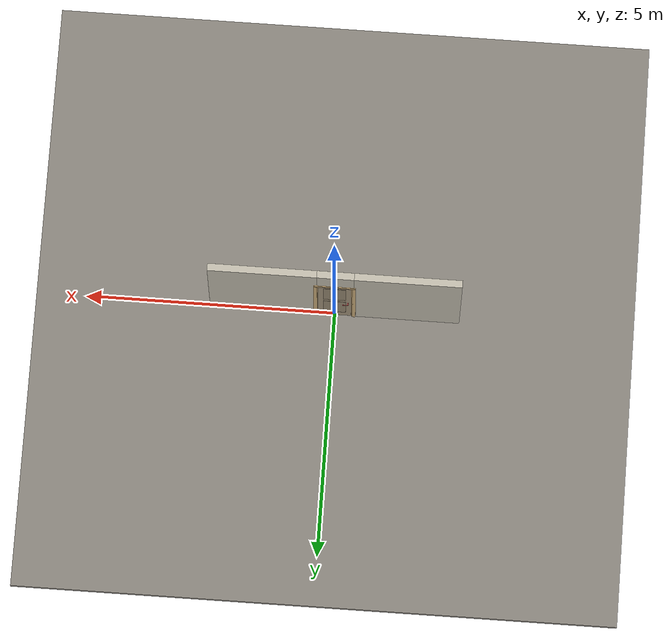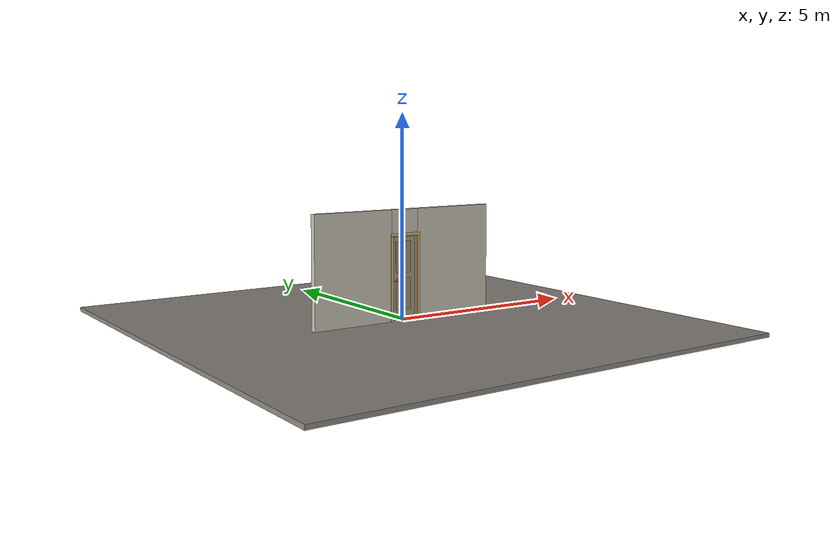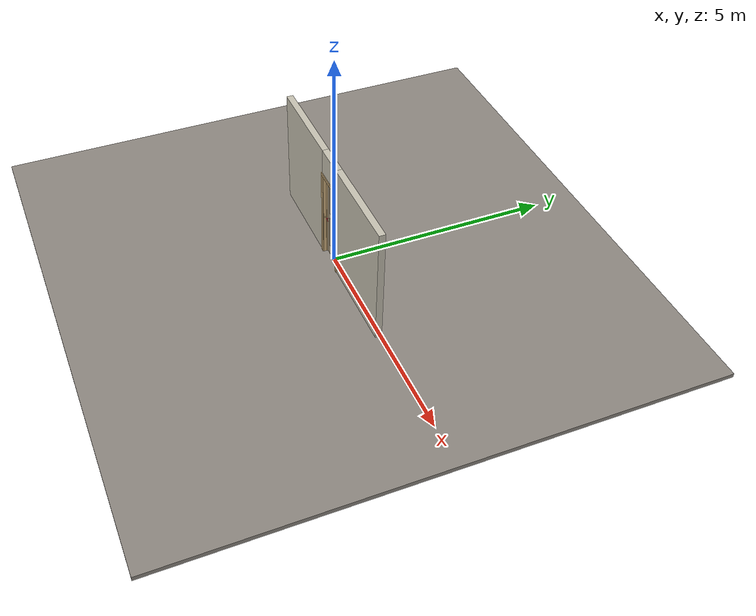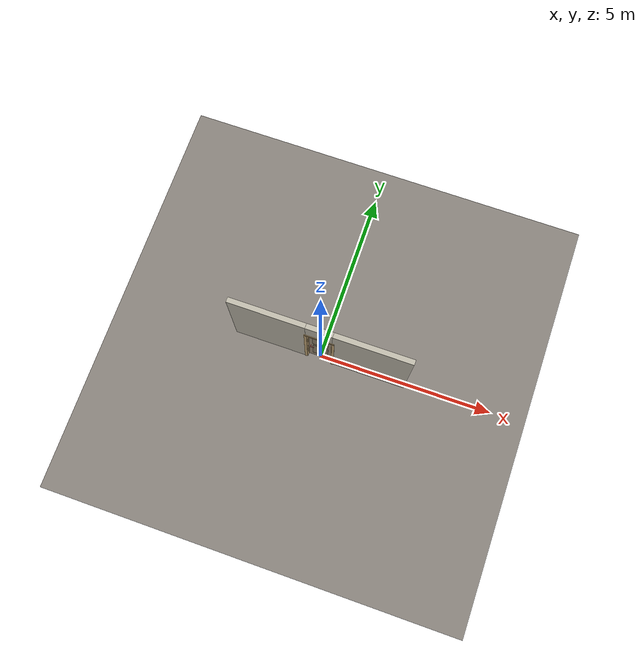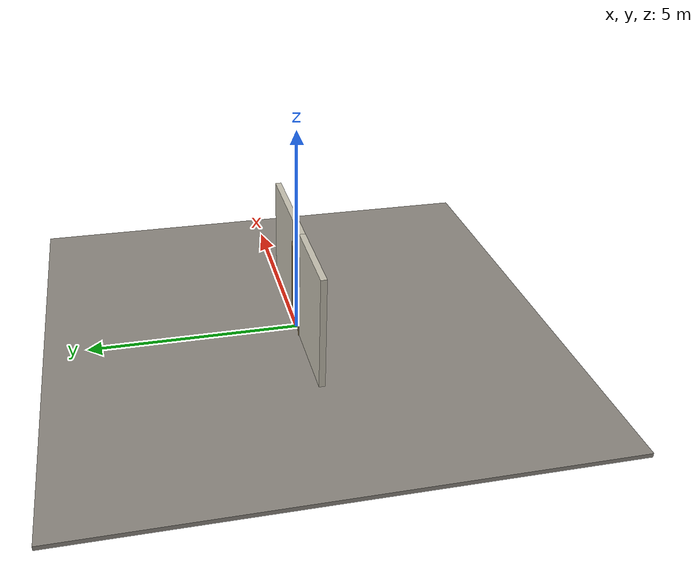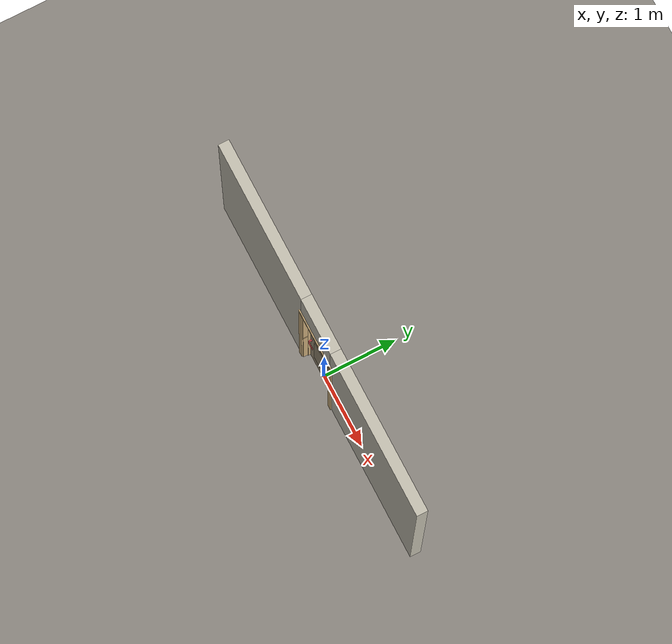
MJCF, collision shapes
<?xml version="1.0" ?>
<mujoco model="db0659_swing_single_full">
  <compiler angle="radian" meshdir="../../hardware" texturedir="../../textures" autolimits="true" inertiafromgeom="false"/>
  <option timestep="0.002" integrator="implicitfast" cone="elliptic" impratio="10" noslip_iterations="3">
    <flag multiccd="enable"/>
  </option>
  <size memory="16M"/>
  <default>
    <geom condim="4" solref="0.005 1" solimp="0.95 0.99 0.001"/>
    <joint solreflimit="0.005 1" solimplimit="0.95 0.99 0.001"/>
    <tendon solreflimit="0.005 1"/>
    <equality solref="0.002 1"/>
  </default>
  <visual>
    <headlight ambient="0.4 0.4 0.4" diffuse="0.7 0.7 0.7" specular="0.2 0.2 0.2"/>
    <quality shadowsize="4096"/>
    <map znear="0.01" zfar="60"/>
  </visual>
  <asset>
    <mesh name="hinge_2af0f4d6ca" file="hinge_2af0f4d6ca.obj"/>
    <mesh name="hinge_jamb_c0c0a62ada" file="hinge_jamb_c0c0a62ada.obj"/>
    <mesh name="lever_748f08efca" file="lever_748f08efca.obj"/>
    <material name="mat_floor" rgba="0.55 0.53 0.5 1" specular="0.2" shininess="0.15" reflectance="0"/>
    <material name="mat_wall" rgba="0.78 0.76 0.7 1" specular="0.2" shininess="0.1" reflectance="0"/>
    <material name="mat_leaf" rgba="0.66 0.6 0.5 1" specular="0.2" shininess="0.45" reflectance="0"/>
    <material name="mat_leaf_panel" rgba="0.607 0.552 0.46 1" specular="0.2" shininess="0.45" reflectance="0"/>
    <material name="mat_hinge" rgba="0.65 0.66 0.68 1" specular="0.74" shininess="0.5" reflectance="0.36"/>
    <material name="mat_op_chrome" rgba="0.9 0.9 0.92 1" specular="0.8" shininess="0.9" reflectance="0.4"/>
    <material name="mat_trim" rgba="0.85 0.66 0.3 1" specular="0.8" shininess="0.75" reflectance="0.4"/>
    <material name="mat_bolt" rgba="0.85 0.66 0.3 1" specular="0.8" shininess="0.75" reflectance="0.4"/>
    <material name="mat_frame" rgba="0.82 0.7 0.5 1" specular="0.2" shininess="0.45" reflectance="0"/>
    <texture name="skybox" type="skybox" builtin="gradient" rgb1="0.6 0.7 0.85" rgb2="0.9 0.92 0.95" width="256" height="256"/>
  </asset>
  <worldbody>
    <light name="sun" pos="1.5 -2.5 4" dir="-0.3 0.5 -0.8" directional="true" diffuse="0.8 0.8 0.8" specular="0.3 0.3 0.3" castshadow="true"/>
    <light name="fill" pos="-1.5 2.5 3" dir="0.3 -0.5 -0.7" directional="true" diffuse="0.35 0.35 0.4" castshadow="false"/>
    <camera name="robot_view" pos="0 -2.585687 1.734312" xyaxes="1 0 0 0 0.26963 0.962964" fovy="52"/>
    <camera name="far_view" pos="0 2.498687 1.734312" xyaxes="-1 0 0 0 -0.26963 0.962964" fovy="52"/>
    <camera name="iso" pos="-1.932062 -2.178937 2.141063" xyaxes="0.741536 -0.670913 0 0.242917 0.268487 0.932151" fovy="46"/>
    <camera name="detail_handle" pos="0.0006 -0.877 1.245" xyaxes="0.97561 0.219512 0 -0.070934 0.315262 0.94635" fovy="38"/>
    <geom name="floor" type="box" size="6 6 0.05" pos="0 0 -0.05" material="mat_floor" group="0" contype="1" conaffinity="1" friction="0.8 0.005 0.0001" density="2400"/>
    <geom name="wall_left" type="box" size="1.0585 0.0725 1.35" pos="-1.4415 -0.0435 1.35" material="mat_wall" group="0" contype="1" conaffinity="1" friction="0.6 0.005 0.0001" density="800"/>
    <geom name="wall_right" type="box" size="1.0735 0.0725 1.35" pos="1.4265 -0.0435 1.35" material="mat_wall" group="0" contype="1" conaffinity="1" friction="0.6 0.005 0.0001" density="800"/>
    <geom name="wall_header" type="box" size="0.368 0.0725 0.303" pos="-0.015 -0.0435 2.397" material="mat_wall" group="0" contype="1" conaffinity="1" friction="0.6 0.005 0.0001" density="800"/>
    <geom name="hinge_0_jamb" type="mesh" mesh="hinge_jamb_c0c0a62ada" pos="0.331 0.029 0.259" quat="0 0 0 1" material="mat_hinge" group="1" contype="0" conaffinity="0" density="7850"/>
    <geom name="hinge_1_jamb" type="mesh" mesh="hinge_jamb_c0c0a62ada" pos="0.331 0.029 1.025" quat="0 0 0 1" material="mat_hinge" group="1" contype="0" conaffinity="0" density="7850"/>
    <geom name="hinge_2_jamb" type="mesh" mesh="hinge_jamb_c0c0a62ada" pos="0.331 0.029 1.861" quat="0 0 0 1" material="mat_hinge" group="1" contype="0" conaffinity="0" density="7850"/>
    <geom name="jamb_hinge" type="box" size="0.0095 0.0725 1.0225" pos="0.3435 -0.0435 1.0225" material="mat_frame" group="0" contype="1" conaffinity="1" friction="0.6 0.005 0.0001" density="400"/>
    <geom name="strike_965_wall_n" type="box" size="0.0245 0.054075 0.0167" pos="-0.3585 -0.061925 0.965" material="mat_frame" group="0" contype="1" conaffinity="1" friction="0.6 0.005 0.0001" density="400"/>
    <geom name="strike_965_wall_p" type="box" size="0.0245 0.008 0.0167" pos="-0.3585 0.01585 0.965" material="mat_frame" group="0" contype="1" conaffinity="1" friction="0.6 0.005 0.0001" density="400"/>
    <geom name="strike_965_ramp" type="box" size="0.0245 0.01649 0.0167" pos="-0.363136 0.028673 0.965" quat="0.977148 0 0 0.212558" material="mat_frame" group="0" contype="1" conaffinity="1" friction="0.12 0.005 0.0001" density="400"/>
    <geom name="strike_965_back" type="box" size="0.01615 0.00785 0.0167" pos="-0.36685 0 0.965" material="mat_frame" group="0" contype="1" conaffinity="1" friction="0.6 0.005 0.0001" density="400"/>
    <geom name="jamb_strike_0" type="box" size="0.0245 0.0725 0.47415" pos="-0.3585 -0.0435 0.47415" material="mat_frame" group="0" contype="1" conaffinity="1" friction="0.6 0.005 0.0001" density="400"/>
    <geom name="jamb_strike_1" type="box" size="0.0245 0.0725 0.53165" pos="-0.3585 -0.0435 1.51335" material="mat_frame" group="0" contype="1" conaffinity="1" friction="0.6 0.005 0.0001" density="400"/>
    <geom name="jamb_head" type="box" size="0.368 0.0725 0.0095" pos="-0.015 -0.0435 2.0545" material="mat_frame" group="0" contype="1" conaffinity="1" friction="0.6 0.005 0.0001" density="400"/>
    <geom name="head_stud" type="box" size="0.368 0.0725 0.015" pos="-0.015 -0.0435 2.079" material="mat_wall" group="0" contype="1" conaffinity="1" friction="0.6 0.005 0.0001" density="500"/>
    <geom name="stop_hinge" type="box" size="0.0055 0.016 1.0225" pos="0.3285 -0.0385 1.0225" material="mat_frame" group="0" contype="1" conaffinity="1" friction="0.6 0.005 0.0001" density="400"/>
    <geom name="stop_strike" type="box" size="0.0055 0.016 1.0225" pos="-0.3285 -0.0385 1.0225" material="mat_frame" group="0" contype="1" conaffinity="1" friction="0.6 0.005 0.0001" density="400"/>
    <geom name="stop_head" type="box" size="0.334 0.016 0.0055" pos="0 -0.0385 2.0395" material="mat_frame" group="0" contype="1" conaffinity="1" friction="0.6 0.005 0.0001" density="400"/>
    <geom name="casing_l_n" type="box" size="0.035 0.008 1.032" pos="-0.383 -0.124 1.0225" material="mat_frame" group="2" contype="0" conaffinity="0" density="400"/>
    <geom name="casing_r_n" type="box" size="0.035 0.008 1.032" pos="0.383 -0.124 1.0225" material="mat_frame" group="2" contype="0" conaffinity="0" density="400"/>
    <geom name="casing_h_n" type="box" size="0.418 0.008 0.035" pos="0 -0.124 2.094" material="mat_frame" group="2" contype="0" conaffinity="0" density="400"/>
    <geom name="casing_l_p" type="box" size="0.035 0.008 1.032" pos="-0.383 0.037 1.0225" material="mat_frame" group="2" contype="0" conaffinity="0" density="400"/>
    <geom name="casing_r_p" type="box" size="0.035 0.008 1.032" pos="0.383 0.037 1.0225" material="mat_frame" group="2" contype="0" conaffinity="0" density="400"/>
    <geom name="casing_h_p" type="box" size="0.418 0.008 0.035" pos="0 0.037 2.094" material="mat_frame" group="2" contype="0" conaffinity="0" density="400"/>
    <site name="approach_point" pos="0 -1.5 0" quat="1 0 0 0" size="0.05" rgba="0.2 0.9 0.2 0.5" group="4"/>
    <site name="goal_point" pos="0 1.5 0" quat="1 0 0 0" size="0.05" rgba="0.2 0.9 0.2 0.5" group="4"/>
    <site name="door_plane_center" pos="0 0 1.0225" quat="1 0 0 0" size="0.02" rgba="0.2 0.9 0.2 0.5" group="4"/>
    <body name="leaf" pos="0.334 0 0">
      <inertial pos="-0.326835 0.000297 1.025435" mass="24.104495" quat="0.49949 0.500763 -0.499226 0.500519" diaginertia="0.912751162 8.332096338 9.236774195"/>
      <joint name="leaf_hinge" type="hinge" axis="0 0 -1" pos="-0.003 0.029 0" limited="true" range="0 1.745329" damping="0.119633" frictionloss="0.469913" armature="0.02"/>
      <geom name="leaf_slab" type="box" size="0.33 0.022 1.016" pos="-0.333 0 1.025" material="mat_leaf" group="0" contype="1" conaffinity="1" friction="0.35 0.005 0.0001" density="1"/>
      <geom name="leaf_panel_0_n" type="box" size="0.22 0.003 0.38422" pos="-0.333 -0.025 0.63674" material="mat_leaf_panel" group="1" contype="0" conaffinity="0" density="1"/>
      <geom name="leaf_panel_0_p" type="box" size="0.22 0.003 0.38422" pos="-0.333 0.025 0.63674" material="mat_leaf_panel" group="1" contype="0" conaffinity="0" density="1"/>
      <geom name="leaf_panel_1_n" type="box" size="0.22 0.003 0.38422" pos="-0.333 -0.025 1.53518" material="mat_leaf_panel" group="1" contype="0" conaffinity="0" density="1"/>
      <geom name="leaf_panel_1_p" type="box" size="0.22 0.003 0.38422" pos="-0.333 0.025 1.53518" material="mat_leaf_panel" group="1" contype="0" conaffinity="0" density="1"/>
      <geom name="hinge_0" type="mesh" mesh="hinge_2af0f4d6ca" pos="-0.003 0.029 0.259" quat="0 0 0 1" material="mat_hinge" group="1" contype="0" conaffinity="0" density="7850"/>
      <geom name="hinge_1" type="mesh" mesh="hinge_2af0f4d6ca" pos="-0.003 0.029 1.025" quat="0 0 0 1" material="mat_hinge" group="1" contype="0" conaffinity="0" density="7850"/>
      <geom name="hinge_2" type="mesh" mesh="hinge_2af0f4d6ca" pos="-0.003 0.029 1.861" quat="0 0 0 1" material="mat_hinge" group="1" contype="0" conaffinity="0" density="7850"/>
      <geom name="leaf_latch_bolt_faceplate" type="box" size="0.0006 0.01235 0.0267" pos="-0.6624 0 0.965" material="mat_bolt" group="1" contype="0" conaffinity="0" density="8500"/>
      <site name="leaf_edge_mid" pos="-0.663 0 1.016" quat="1 0 0 0" size="0.02" rgba="0.2 0.9 0.2 0.5" group="4"/>
      <body name="leaf_handle" pos="-0.603 0 0.965">
        <inertial pos="0.024187 0 0" mass="0.847798" quat="0.707107 0 0 -0.707107" diaginertia="0.00118733 0.003222067 0.004272567"/>
        <joint name="leaf_handle_hinge" type="hinge" axis="0 1 0" limited="true" range="0 0.87" damping="0.205085" frictionloss="0.04" stiffness="0.9" springref="-0.444444" armature="0.01"/>
        <geom name="leaf_handle_spindle" type="cylinder" size="0.006 0.03" pos="0 0 0" quat="0.707107 -0.707107 0 0" material="mat_op_chrome" group="1" contype="0" conaffinity="0" density="7850"/>
        <geom name="leaf_handle_lever_n" type="mesh" mesh="lever_748f08efca" pos="0 -0.022 0" quat="0 0 -0.707107 0.707107" material="mat_op_chrome" group="1" contype="0" conaffinity="0" density="3000"/>
        <geom name="leaf_handle_lever_col_n" type="capsule" size="0.008 0.048" pos="0.056 -0.077 0" quat="0.707107 0 0.707107 0" material="mat_op_chrome" group="3" contype="1" conaffinity="1" rgba="0.8 0.3 0.3 0.25" friction="0.7 0.01 0.0001" density="3000"/>
        <geom name="leaf_handle_hub_col_n" type="cylinder" size="0.012 0.022" pos="0 -0.052 0" quat="0.707107 -0.707107 0 0" material="mat_op_chrome" group="3" contype="1" conaffinity="1" rgba="0.8 0.3 0.3 0.25" friction="0.6 0.005 0.0001" density="3000"/>
        <geom name="leaf_handle_lever_p" type="mesh" mesh="lever_748f08efca" pos="0 0.022 0" quat="0 0 0.707107 0.707107" material="mat_op_chrome" group="1" contype="0" conaffinity="0" density="3000"/>
        <geom name="leaf_handle_lever_col_p" type="capsule" size="0.008 0.048" pos="0.056 0.077 0" quat="0.707107 0 0.707107 0" material="mat_op_chrome" group="3" contype="1" conaffinity="1" rgba="0.8 0.3 0.3 0.25" friction="0.7 0.01 0.0001" density="3000"/>
        <geom name="leaf_handle_hub_col_p" type="cylinder" size="0.012 0.022" pos="0 0.052 0" quat="0.707107 -0.707107 0 0" material="mat_op_chrome" group="3" contype="1" conaffinity="1" rgba="0.8 0.3 0.3 0.25" friction="0.6 0.005 0.0001" density="3000"/>
        <site name="leaf_handle_grip_n" pos="0.0896 -0.077 0" quat="1 0 0 0" size="0.012" rgba="0.2 0.9 0.2 0.5" group="4"/>
        <site name="leaf_handle_grip_p" pos="0.0896 0.077 0" quat="1 0 0 0" size="0.012" rgba="0.2 0.9 0.2 0.5" group="4"/>
      </body>
      <body name="leaf_latch_bolt" pos="-0.663 0 0.965">
        <inertial pos="0.00865 0 0" mass="0.041419" quat="0.92388 0.382683 0 0" diaginertia="0.000000798 0.000005598 0.000005598"/>
        <joint name="leaf_latch_bolt_slide" type="slide" axis="1 0 0" limited="true" range="0 0.0127" damping="2" frictionloss="0.3" stiffness="300" springref="-0.008333" armature="0.1"/>
        <geom name="leaf_latch_bolt_capsule" type="capsule" size="0.00635 0.015" pos="0.00865 0 0" quat="0.707107 0 -0.707107 0" material="mat_bolt" group="0" contype="1" conaffinity="1" friction="0.2 0.005 0.0001" density="8500"/>
      </body>
    </body>
  </worldbody>
  <tendon>
    <fixed name="leaf_latch_bolt_coupling" limited="true" range="0 10">
      <joint joint="leaf_latch_bolt_slide" coef="1"/>
      <joint joint="leaf_handle_hinge" coef="-0.016076"/>
    </fixed>
  </tendon>
  <sensor>
    <jointpos name="leaf_hinge_pos" joint="leaf_hinge"/>
    <jointvel name="leaf_hinge_vel" joint="leaf_hinge"/>
    <jointpos name="leaf_handle_hinge_pos" joint="leaf_handle_hinge"/>
    <jointvel name="leaf_handle_hinge_vel" joint="leaf_handle_hinge"/>
    <jointpos name="leaf_latch_bolt_slide_pos" joint="leaf_latch_bolt_slide"/>
    <jointvel name="leaf_latch_bolt_slide_vel" joint="leaf_latch_bolt_slide"/>
  </sensor>
</mujoco>
